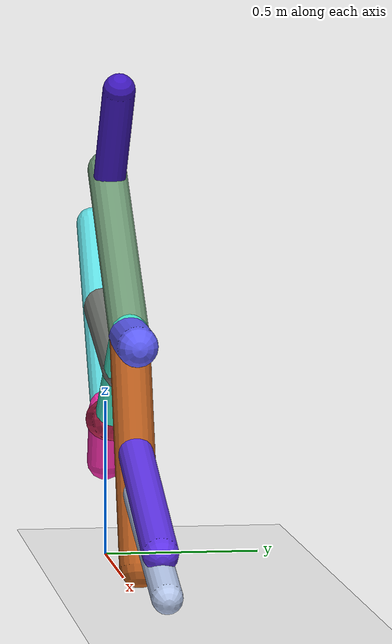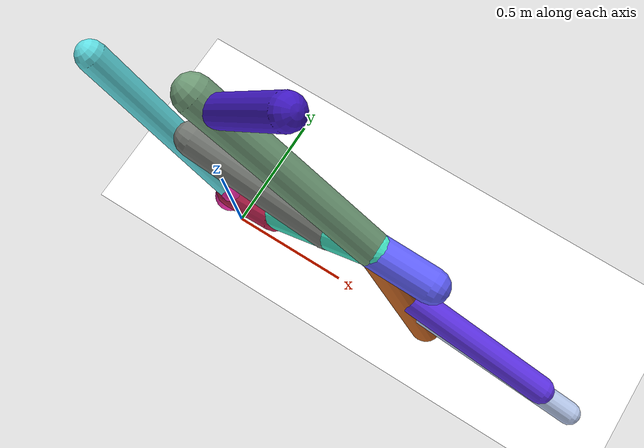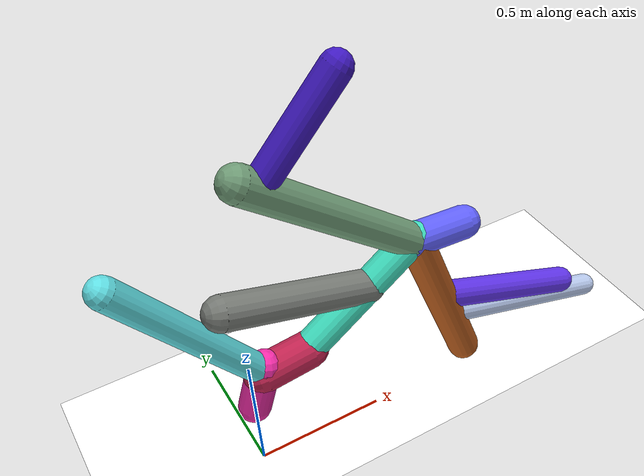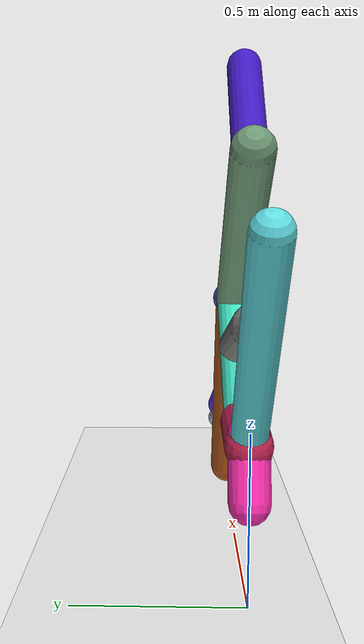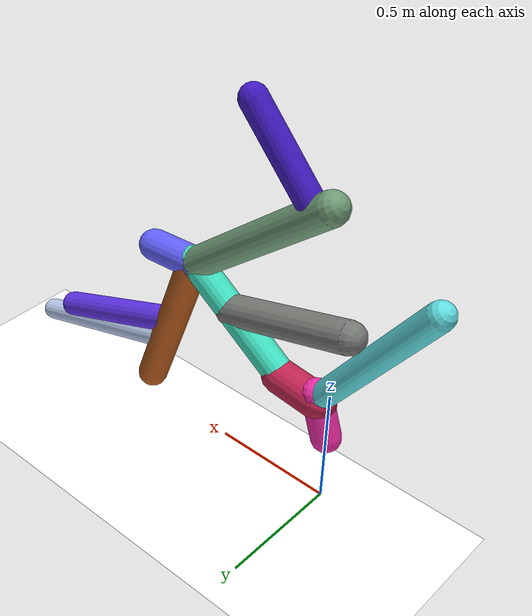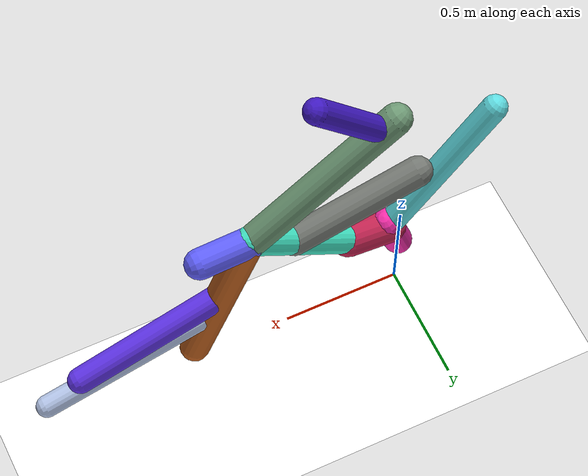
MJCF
<mujoco model="morphology">
  <option timestep="0.01"/>
  <default>
    <default class="/"/>
    <default class="0/"/>
    <default class="0/1/"/>
    <default class="0/2/"/>
    <default class="0/2/3/"/>
    <default class="0/2/3/4/"/>
    <default class="0/2/3/5/"/>
    <default class="0/2/3/5/6/"/>
    <default class="0/2/3/5/6/7/"/>
    <default class="0/2/3/5/6/8/"/>
    <default class="0/2/3/5/9/"/>
    <default class="0/2/3/5/9/10/"/>
  </default>
  <asset>
    <texture name="texplane" type="2d" builtin="checker" rgb1="0.10000000000000001 0.20000000000000001 0.29999999999999999" rgb2="0.20000000000000001 0.29999999999999999 0.40000000000000002" width="300" height="300"/>
    <material name="MatPlane" class="/" texture="texplane" texrepeat="20 20" specular="1" shininess="1" reflectance="0.5"/>
  </asset>
  <worldbody>
    <light name="//unnamed_light_0" class="/" directional="true" pos="0 0 1.5" dir="0 0 -1.3" cutoff="100" exponent="1" diffuse="1 1 1" specular="0.10000000000000001 0.10000000000000001 0.10000000000000001"/>
    <geom name="ground" class="/" type="plane" size="15 15 0.5" material="MatPlane" rgba="1 1 1 1"/>
    <site name="body" class="/" size="9.9999999999999995e-07 9.9999999999999995e-07 9.9999999999999995e-07" pos="0 0 0.3039423882961273"/>
    <body pos="0 0 0.3039423882961273" name="0/">
      <joint name="0/rootx/" class="/" type="slide" axis="1 0 0" limited="false" stiffness="0" armature="0" damping="0"/>
      <joint name="0/rootz/" class="/" type="slide" axis="0 0 1" limited="false" stiffness="0" armature="0" damping="0"/>
      <joint name="0/rooty/" class="/" type="hinge" axis="0 1 0" limited="false" stiffness="0" armature="0" damping="0"/>
      <geom name="0/geom" class="0/" type="capsule" contype="1" conaffinity="1" condim="3" size="0.059563986115441017" rgba="0.97183191933155577 0.17744371731488262 0.67361703306244947 1" friction="0.59999999999999998 0.10000000000000001 0.10000000000000001" fromto="0 0 0 0.058673310678187929 0 0.1803922688617432"/>
      <site name="0/end0" class="0/" size="0.0050000000000000001" pos="0.058673310678187929 0 0.1803922688617432"/>
      <site name="0/attach1" class="0/" size="9.9999999999999995e-07 9.9999999999999995e-07 9.9999999999999995e-07" pos="0.051631045535995949 0 0.15874068363087529"/>
      <body pos="0.051631045535995949 0 0.15874068363087529" name="0/1/">
        <joint name="0/1/joint/" class="0/" type="hinge" axis="0 1 0" limited="true" range="-65.282971110854135 65.282971110854135"/>
        <geom name="0/1/geom" class="0/1/" type="capsule" contype="1" conaffinity="1" condim="3" size="0.052383691702455951" rgba="0.37358813005083469 0.86829638196184855 0.88920240811129614 1" friction="0.59999999999999998 0.10000000000000001 0.10000000000000001" fromto="0 0 0 -0.4227148017912386 0 0.58946965975191978"/>
        <site name="0/1/end1" class="0/1/" size="0.0050000000000000001" pos="-0.4227148017912386 0 0.58946965975191978"/>
      </body>
      <site name="0/attach2" class="0/" size="9.9999999999999995e-07 9.9999999999999995e-07 9.9999999999999995e-07" pos="0.046964733097863497 0 0.14439401257715859"/>
      <body pos="0.046964733097863497 0 0.14439401257715859" name="0/2/">
        <joint name="0/2/joint/" class="0/" type="hinge" axis="0 1 0" limited="true" range="-60.454729468232131 60.454729468232131"/>
        <geom name="0/2/geom" class="0/2/" type="capsule" contype="1" conaffinity="1" condim="3" size="0.069139640152862142" rgba="0.75395611271517005 0.13880472274830846 0.31552161659341416 1" friction="0.59999999999999998 0.10000000000000001 0.10000000000000001" fromto="0 0 0 0.18647887226864879 0 0.020961410456112328"/>
        <site name="0/2/end2" class="0/2/" size="0.0050000000000000001" pos="0.18647887226864879 0 0.020961410456112328"/>
        <site name="0/2/attach3" class="0/2/" size="9.9999999999999995e-07 9.9999999999999995e-07 9.9999999999999995e-07" pos="0.17068030861070102 0 0.019185551489236015"/>
        <body pos="0.17068030861070102 0 0.019185551489236015" name="0/2/3/">
          <joint name="0/2/3/joint/" class="0/2/" type="hinge" axis="0 1 0" limited="true" range="-58.969702047761302 58.969702047761302"/>
          <geom name="0/2/3/geom" class="0/2/3/" type="capsule" contype="1" conaffinity="1" condim="3" size="0.05918068432218733" rgba="0.25700859774230644 0.89556604354741032 0.76899890433248497 1" friction="0.59999999999999998 0.10000000000000001 0.10000000000000001" fromto="0 0 0 0.44938429571748295 0 0.32228064410483404"/>
          <site name="0/2/3/end3" class="0/2/3/" size="0.0050000000000000001" pos="0.44938429571748295 0 0.32228064410483404"/>
          <site name="0/2/3/attach4" class="0/2/3/" size="9.9999999999999995e-07 9.9999999999999995e-07 9.9999999999999995e-07" pos="0.25863088010549923 0 0.18547983857050851"/>
          <body pos="0.25863088010549923 0 0.18547983857050851" name="0/2/3/4/">
            <geom name="0/2/3/4/geom" class="0/2/3/4/" type="capsule" contype="1" conaffinity="1" condim="3" size="0.062937701010738326" rgba="0.45947224903812256 0.47393412984186933 0.45261253470204443 1" friction="0.59999999999999998 0.10000000000000001 0.10000000000000001" fromto="0 0 0 -0.53172534467063792 0 0.14767234627338421"/>
            <site name="0/2/3/4/end4" class="0/2/3/4/" size="0.0050000000000000001" pos="-0.53172534467063792 0 0.14767234627338421"/>
          </body>
          <site name="0/2/3/attach5" class="0/2/3/" size="9.9999999999999995e-07 9.9999999999999995e-07 9.9999999999999995e-07" pos="0.43521745095529785 0 0.31212074332859385"/>
          <body pos="0.43521745095529785 0 0.31212074332859385" name="0/2/3/5/">
            <joint name="0/2/3/5/joint/" class="0/2/3/" type="hinge" axis="0 1 0" limited="true" range="-51.058865902671911 51.058865902671911"/>
            <geom name="0/2/3/5/geom" class="0/2/3/5/" type="capsule" contype="1" conaffinity="1" condim="3" size="0.063102574524929816" rgba="0.37724948522463198 0.37832074357223511 0.99180535261086367 1" friction="0.59999999999999998 0.10000000000000001 0.10000000000000001" fromto="0 0 0 0.22557702693515769 0 -0.012450356974223808"/>
            <site name="0/2/3/5/end5" class="0/2/3/5/" size="0.0050000000000000001" pos="0.22557702693515769 0 -0.012450356974223808"/>
            <site name="0/2/3/5/attach6" class="0/2/3/5/" size="9.9999999999999995e-07 9.9999999999999995e-07 9.9999999999999995e-07" pos="0.01735745677903075 0 -0.00095801658528691335"/>
            <body pos="0.01735745677903075 0 -0.00095801658528691335" name="0/2/3/5/6/">
              <joint name="0/2/3/5/6/joint/" class="0/2/3/5/" type="hinge" axis="0 1 0" limited="true" range="-38.995124040966097 38.995124040966097"/>
              <geom name="0/2/3/5/6/geom" class="0/2/3/5/6/" type="capsule" contype="1" conaffinity="1" condim="3" size="0.06291341836083697" rgba="0.74696653672459756 0.37742747272946375 0.12106015931066516 1" friction="0.59999999999999998 0.10000000000000001 0.10000000000000001" fromto="0 0 0 0.25064097043714306 0 -0.67868468601997889"/>
              <site name="0/2/3/5/6/end6" class="0/2/3/5/6/" size="0.0050000000000000001" pos="0.25064097043714306 0 -0.67868468601997889"/>
              <site name="0/2/3/5/6/attach7" class="0/2/3/5/6/" size="9.9999999999999995e-07 9.9999999999999995e-07 9.9999999999999995e-07" pos="0.16470855696734621 0 -0.44599721695628047"/>
              <body pos="0.16470855696734621 0 -0.44599721695628047" name="0/2/3/5/6/7/">
                <geom name="0/2/3/5/6/7/geom" class="0/2/3/5/6/7/" type="capsule" contype="1" conaffinity="1" condim="3" size="0.046597908826148435" rgba="0.7198772436440376 0.78854164366471169 0.92806984583774987 1" friction="0.59999999999999998 0.10000000000000001 0.10000000000000001" fromto="0 0 0 0.7387507141614531 0 -0.22110600693264604"/>
                <site name="0/2/3/5/6/7/end7" class="0/2/3/5/6/7/" size="0.0050000000000000001" pos="0.7387507141614531 0 -0.22110600693264604"/>
              </body>
              <site name="0/2/3/5/6/attach8" class="0/2/3/5/6/" size="9.9999999999999995e-07 9.9999999999999995e-07 9.9999999999999995e-07" pos="0.12290068630255255 0 -0.33279002051983342"/>
              <body pos="0.12290068630255255 0 -0.33279002051983342" name="0/2/3/5/6/8/">
                <joint name="0/2/3/5/6/8/joint/" class="0/2/3/5/6/" type="hinge" axis="0 1 0" limited="true" range="-45.462281480903926 45.462281480903926"/>
                <geom name="0/2/3/5/6/8/geom" class="0/2/3/5/6/8/" type="capsule" contype="1" conaffinity="1" condim="3" size="0.054386455780126908" rgba="0.37500222438184716 0.20071902352717441 0.91262990488395279 1" friction="0.59999999999999998 0.10000000000000001 0.10000000000000001" fromto="0 0 0 0.62590388015996479 0 -0.22951299487020083"/>
                <site name="0/2/3/5/6/8/end8" class="0/2/3/5/6/8/" size="0.0050000000000000001" pos="0.62590388015996479 0 -0.22951299487020083"/>
              </body>
            </body>
            <site name="0/2/3/5/attach9" class="0/2/3/5/" size="9.9999999999999995e-07 9.9999999999999995e-07 9.9999999999999995e-07" pos="0.0084847121445184477 0 -0.00046829988167701296"/>
            <body pos="0.0084847121445184477 0 -0.00046829988167701296" name="0/2/3/5/9/">
              <joint name="0/2/3/5/9/joint/" class="0/2/3/5/" type="hinge" axis="0 1 0" limited="true" range="-37.609476120866795 37.609476120866795"/>
              <geom name="0/2/3/5/9/geom" class="0/2/3/5/9/" type="capsule" contype="1" conaffinity="1" condim="3" size="0.062958820122843928" rgba="0.43536412082422937 0.60616481841135794 0.46391060549852992 1" friction="0.59999999999999998 0.10000000000000001 0.10000000000000001" fromto="0 0 0 -0.59791680639606493 0 0.47646700523762719"/>
              <site name="0/2/3/5/9/end9" class="0/2/3/5/9/" size="0.0050000000000000001" pos="-0.59791680639606493 0 0.47646700523762719"/>
              <site name="0/2/3/5/9/attach10" class="0/2/3/5/9/" size="9.9999999999999995e-07 9.9999999999999995e-07 9.9999999999999995e-07" pos="-0.54320714461037078 0 0.43287005591333294"/>
              <body pos="-0.54320714461037078 0 0.43287005591333294" name="0/2/3/5/9/10/">
                <joint name="0/2/3/5/9/10/joint/" class="0/2/3/5/9/" type="hinge" axis="0 1 0" limited="true" range="-44.087851997855054 44.087851997855054"/>
                <geom name="0/2/3/5/9/10/geom" class="0/2/3/5/9/10/" type="capsule" contype="1" conaffinity="1" condim="3" size="0.052062634702999606" rgba="0.25415880902787946 0.10055141391331979 0.76327215705705342 1" friction="0.59999999999999998 0.10000000000000001 0.10000000000000001" fromto="0 0 0 0.28238797190105736 0 0.31330837236158948"/>
                <site name="0/2/3/5/9/10/end10" class="0/2/3/5/9/10/" size="0.0050000000000000001" pos="0.28238797190105736 0 0.31330837236158948"/>
              </body>
            </body>
          </body>
        </body>
      </body>
      <camera name="0/side" class="0/" mode="trackcom" pos="0.40000000000000002 -4 0.20000000000000001" quat="0.70699999999999996 0.70699999999999996 0 0"/>
    </body>
  </worldbody>
  <actuator>
    <motor name="0/1/motor" class="0/1/" ctrllimited="true" ctrlrange="-1 1" gear="68" joint="0/1/joint/"/>
    <motor name="0/2/motor" class="0/2/" ctrllimited="true" ctrlrange="-1 1" gear="55" joint="0/2/joint/"/>
    <motor name="0/2/3/motor" class="0/2/3/" ctrllimited="true" ctrlrange="-1 1" gear="58" joint="0/2/3/joint/"/>
    <motor name="0/2/3/5/motor" class="0/2/3/5/" ctrllimited="true" ctrlrange="-1 1" gear="62" joint="0/2/3/5/joint/"/>
    <motor name="0/2/3/5/6/motor" class="0/2/3/5/6/" ctrllimited="true" ctrlrange="-1 1" gear="85" joint="0/2/3/5/6/joint/"/>
    <motor name="0/2/3/5/6/8/motor" class="0/2/3/5/6/8/" ctrllimited="true" ctrlrange="-1 1" gear="79" joint="0/2/3/5/6/8/joint/"/>
    <motor name="0/2/3/5/9/motor" class="0/2/3/5/9/" ctrllimited="true" ctrlrange="-1 1" gear="83" joint="0/2/3/5/9/joint/"/>
    <motor name="0/2/3/5/9/10/motor" class="0/2/3/5/9/10/" ctrllimited="true" ctrlrange="-1 1" gear="50" joint="0/2/3/5/9/10/joint/"/>
  </actuator>
  <sensor>
    <subtreelinvel name="velocity" body="0/"/>
  </sensor>
</mujoco>
